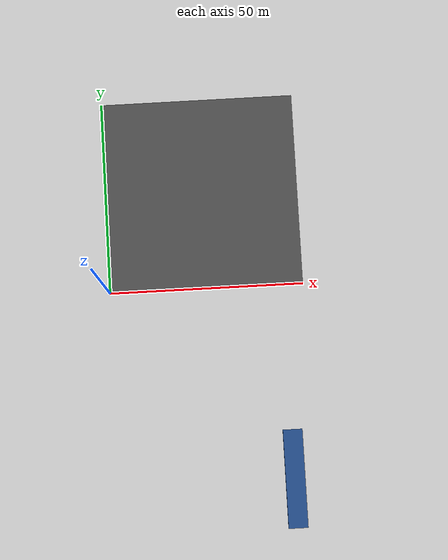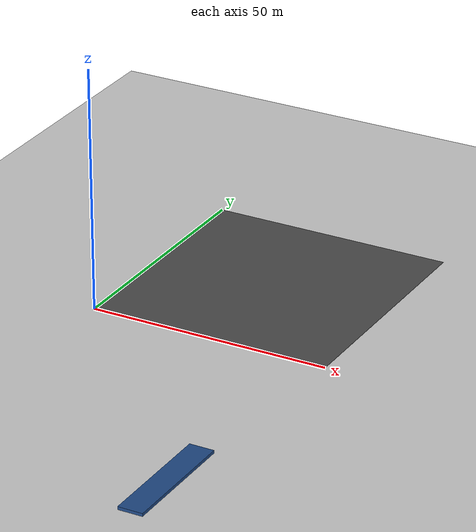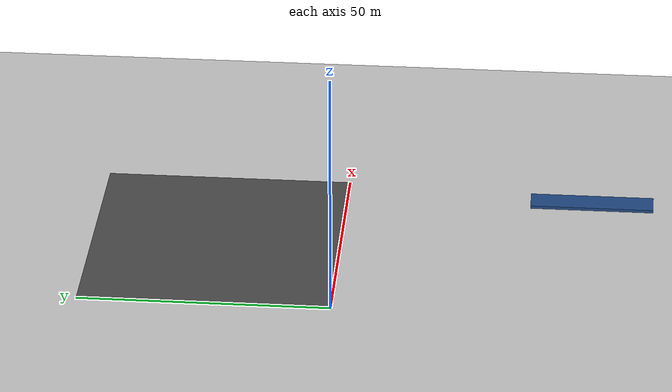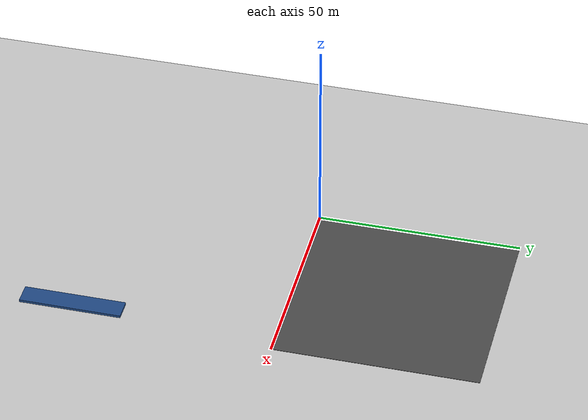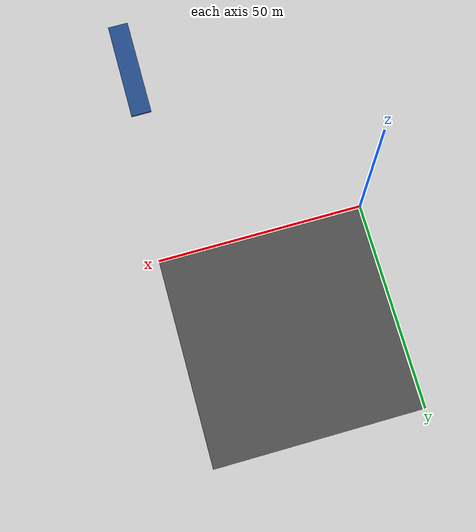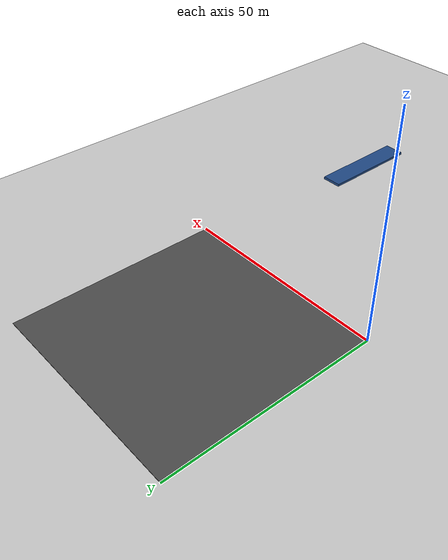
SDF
<sdf version="1.7">
 <world name="default">
  <model name="ground_plane">
   <static>1</static>
   <link name="link">
    <collision name="collision">
     <geometry><plane><normal>0 0 1</normal><size>100 100</size></plane></geometry>
     <surface>
      <contact><collide_bitmask>65535</collide_bitmask></contact>
      <friction><ode><mu>100</mu><mu2>50</mu2></ode></friction>
     </surface>
    </collision>
    <visual name="visual">
     <cast_shadows>0</cast_shadows>
     <geometry><plane><normal>0 0 1</normal><size>100 100</size></plane></geometry>
     <material>
      <script><uri>file://media/materials/scripts/gazebo.material</uri><name>Gazebo/Grey</name></script>
     </material>
    </visual>
   </link>
  </model>
  <model name="asphalt_plane">
   <link name="link">
    <inertial>
     <mass>1</mass>
     <inertia><ixx>1</ixx><ixy>0</ixy><ixz>0</ixz><iyy>1</iyy><iyz>0</iyz><izz>1</izz></inertia>
    </inertial>
    <visual name="visual">
     <cast_shadows>0</cast_shadows>
     <geometry><box><size>50 50 0.1</size></box></geometry>
     <material>
      <script>
       <uri>model://asphalt_plane/materials/scripts</uri>
       <uri>model://asphalt_plane/materials/textures</uri>
       <name>vrc/asphalt</name>
      </script>
      <shader type="pixel"><normal_map>__default__</normal_map></shader>
      <ambient>0.5 0.5 0.5 1</ambient>
      <diffuse>0.5 0.5 0.5 1</diffuse>
      <specular>0.2 0.2 0.2 1</specular>
      <emissive>0 0 0 1</emissive>
     </material>
    </visual>
    <collision name="collision">
     <geometry><box><size>50 50 0.1</size></box></geometry>
     <surface>
      <friction>
       <ode><mu>1</mu><mu2>1</mu2><fdir1>0 0 0</fdir1><slip1>0</slip1><slip2>0</slip2></ode>
       <torsional>
        <coefficient>1</coefficient>
        <patch_radius>0</patch_radius>
        <surface_radius>0</surface_radius>
        <use_patch_radius>1</use_patch_radius>
        <ode><slip>0</slip></ode>
       </torsional>
      </friction>
      <bounce><restitution_coefficient>0</restitution_coefficient><threshold>1e+06</threshold></bounce>
      <contact>
       <collide_without_contact>0</collide_without_contact>
       <collide_without_contact_bitmask>1</collide_without_contact_bitmask>
       <collide_bitmask>1</collide_bitmask>
       <ode>
        <soft_cfm>0</soft_cfm>
        <soft_erp>0.2</soft_erp>
        <kp>1e+13</kp>
        <kd>1</kd>
        <max_vel>0.01</max_vel>
        <min_depth>0</min_depth>
       </ode>
       <bullet>
        <split_impulse>1</split_impulse>
        <split_impulse_penetration_threshold>-0.01</split_impulse_penetration_threshold>
        <soft_cfm>0</soft_cfm>
        <soft_erp>0.2</soft_erp>
        <kp>1e+13</kp>
        <kd>1</kd>
       </bullet>
      </contact>
     </surface>
    </collision>
   </link>
   <static>1</static>
   <pose>25 25 0 0 -0 0</pose>
  </model>
  <model name="blue_box_25x5_clone">
   <link name="link">
    <inertial>
     <mass>1</mass>
     <inertia>
      <ixx>0.166667</ixx>
      <ixy>0</ixy>
      <ixz>0</ixz>
      <iyy>0.166667</iyy>
      <iyz>0</iyz>
      <izz>0.166667</izz>
     </inertia>
    </inertial>
    <visual name="visual">
     <geometry><box><size>25 5 1</size></box></geometry>
     <material>
      <script><name>Gazebo/Grey</name><uri>file://media/materials/scripts/gazebo.material</uri></script>
      <shader type="pixel"><normal_map>__default__</normal_map></shader>
      <ambient>0.125 0.29 0.529 1</ambient>
      <diffuse>0.7 0.7 0.7 1</diffuse>
      <specular>0.01 0.01 0.01 1</specular>
      <emissive>0 0 0 1</emissive>
     </material>
    </visual>
    <collision name="collision">
     <geometry><box><size>25 5 1</size></box></geometry>
     <surface>
      <friction>
       <ode><mu>1</mu><mu2>1</mu2><fdir1>0 0 0</fdir1><slip1>0</slip1><slip2>0</slip2></ode>
       <torsional>
        <coefficient>1</coefficient>
        <patch_radius>0</patch_radius>
        <surface_radius>0</surface_radius>
        <use_patch_radius>1</use_patch_radius>
        <ode><slip>0</slip></ode>
       </torsional>
      </friction>
      <bounce><restitution_coefficient>0</restitution_coefficient><threshold>1e+06</threshold></bounce>
      <contact>
       <collide_without_contact>0</collide_without_contact>
       <collide_without_contact_bitmask>1</collide_without_contact_bitmask>
       <collide_bitmask>1</collide_bitmask>
       <ode>
        <soft_cfm>0</soft_cfm>
        <soft_erp>0.2</soft_erp>
        <kp>1e+13</kp>
        <kd>1</kd>
        <max_vel>0.01</max_vel>
        <min_depth>0</min_depth>
       </ode>
       <bullet>
        <split_impulse>1</split_impulse>
        <split_impulse_penetration_threshold>-0.01</split_impulse_penetration_threshold>
        <soft_cfm>0</soft_cfm>
        <soft_erp>0.2</soft_erp>
        <kp>1e+13</kp>
        <kd>1</kd>
       </bullet>
      </contact>
     </surface>
    </collision>
   </link>
   <static>1</static>
   <pose>45 -50 0 0 -0 1.5708</pose>
  </model>
 </world>
</sdf>
